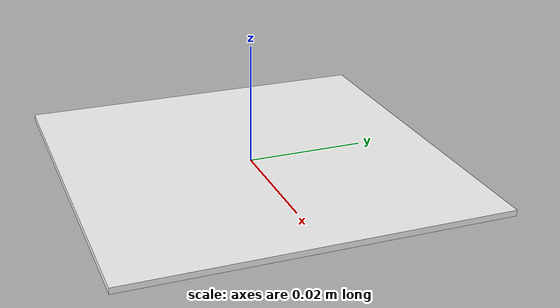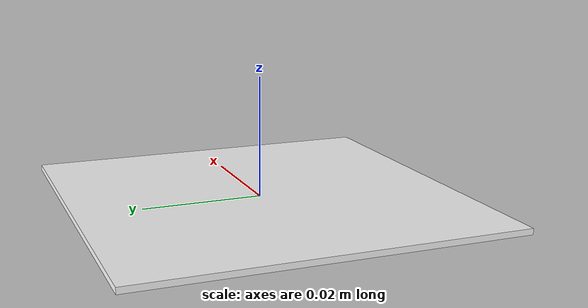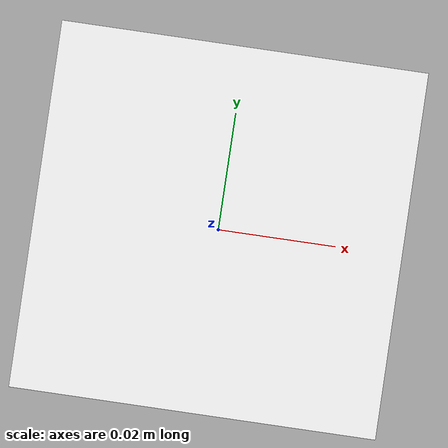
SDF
<?xml version="1.0"?>
<sdf version="1.9">
  <model name="apriltag_36h11_19_50mm_62.5mm">
    <static>true</static>

    <link name="apriltag_36h11_19_50mm_link">

      <collision name="collision">
        <pose>0 0 0 0 0 0</pose>
        <geometry>
          <box>
            <size>0.0625 0.0625 0.001</size>
          </box>
        </geometry>
      </collision>

      <visual name="apriltag_36h11_19_50mm_visual">
        <pose>0 0 0 0 0 0</pose>
        <geometry>
          <box>
            <size>0.0625 0.0625 0.001</size>
          </box>
        </geometry>
        <material>
          <diffuse>1 1 1 1</diffuse>
          <specular>0.4 0.4 0.4 1</specular>
          <pbr>
            <metal>
              <albedo_map>model://apriltag_36h11_19_50mm/materials/textures/tag36h11_19_50mm_62.5mm.png</albedo_map>
            </metal>
          </pbr>
        </material>
      </visual>

    </link>
  </model>
</sdf>
